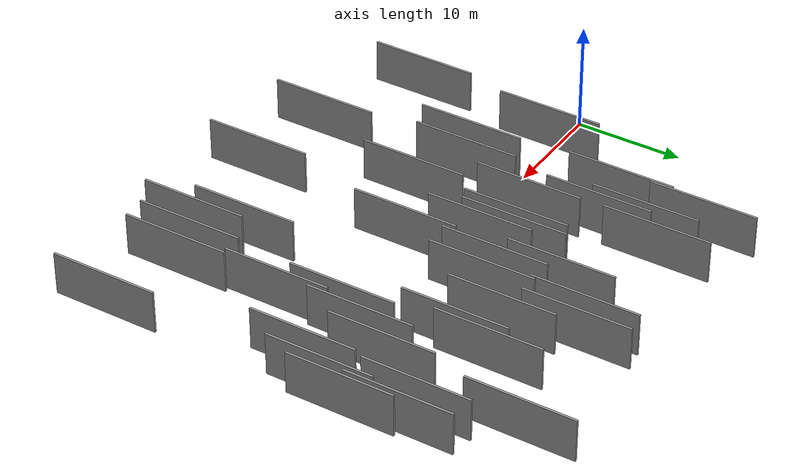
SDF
<sdf version="1.6">
 <world name="default">
  <scene>
   <sky><clouds><speed>12</speed></clouds></sky>
   <ambient>0.4 0.4 0.4 1</ambient>
   <background>0.7 0.7 0.7 1</background>
   <shadows>1</shadows>
  </scene>
  <gravity>0 0 -9.8066</gravity>
  <magnetic_field>6e-06 2.3e-05 -4.2e-05</magnetic_field>
  <physics default="0" name="default_physics" type="ode">
   <ode>
    <solver>
     <type>quick</type>
     <iters>10</iters>
     <sor>1.0</sor>
     <use_dynamic_moi_rescaling>0</use_dynamic_moi_rescaling>
    </solver>
    <constraints>
     <cfm>0</cfm>
     <erp>0.2</erp>
     <contact_max_correcting_vel>100</contact_max_correcting_vel>
     <contact_surface_layer>0.001</contact_surface_layer>
    </constraints>
   </ode>
   <max_step_size>0.004</max_step_size>
   <real_time_factor>1</real_time_factor>
   <real_time_update_rate>250</real_time_update_rate>
  </physics>
  <light name="sun" type="directional">
   <pose>0 0 10 0 0 0</pose>
   <diffuse>0.8 0.8 0.8 1</diffuse>
   <specular>0.2 0.2 0.2 1</specular>
   <attenuation>
    <range>1000</range>
    <constant>0.9</constant>
    <linear>0.01</linear>
    <quadratic>0.001</quadratic>
   </attenuation>
   <direction>-0.5 0.1 -0.9</direction>
  </light>
  <model name="grey_wall_1">
   <static>1</static>
   <pose>44.4361 -19.3445 0.0 0.000000 0.000000 1.570796</pose>
   <link name="link">
    <pose>0 0 2.00 0 0 0</pose>
    <collision name="collision"><geometry><box><size>10.00 0.2 4.00</size></box></geometry></collision>
    <visual name="visual">
     <cast_shadows>0</cast_shadows>
     <geometry><box><size>10.00 0.2 4.00</size></box></geometry>
     <material>
      <script>
       <uri>model://grey_wall/materials/scripts</uri>
       <uri>model://grey_wall/materials/textures</uri>
       <name>vrc/grey_wall</name>
      </script>
     </material>
    </visual>
   </link>
  </model>
  <model name="grey_wall_2">
   <static>1</static>
   <pose>12.5489 13.1491 0.0 0.000000 0.000000 1.570796</pose>
   <link name="link">
    <pose>0 0 2.00 0 0 0</pose>
    <collision name="collision"><geometry><box><size>10.00 0.2 4.00</size></box></geometry></collision>
    <visual name="visual">
     <cast_shadows>0</cast_shadows>
     <geometry><box><size>10.00 0.2 4.00</size></box></geometry>
     <material>
      <script>
       <uri>model://grey_wall/materials/scripts</uri>
       <uri>model://grey_wall/materials/textures</uri>
       <name>vrc/grey_wall</name>
      </script>
     </material>
    </visual>
   </link>
  </model>
  <model name="grey_wall_3">
   <static>1</static>
   <pose>36.4900 -7.8913 0.0 0.000000 0.000000 1.570796</pose>
   <link name="link">
    <pose>0 0 2.00 0 0 0</pose>
    <collision name="collision"><geometry><box><size>10.00 0.2 4.00</size></box></geometry></collision>
    <visual name="visual">
     <cast_shadows>0</cast_shadows>
     <geometry><box><size>10.00 0.2 4.00</size></box></geometry>
     <material>
      <script>
       <uri>model://grey_wall/materials/scripts</uri>
       <uri>model://grey_wall/materials/textures</uri>
       <name>vrc/grey_wall</name>
      </script>
     </material>
    </visual>
   </link>
  </model>
  <model name="grey_wall_4">
   <static>1</static>
   <pose>40.1889 17.0929 0.0 0.000000 0.000000 1.570796</pose>
   <link name="link">
    <pose>0 0 2.00 0 0 0</pose>
    <collision name="collision"><geometry><box><size>10.00 0.2 4.00</size></box></geometry></collision>
    <visual name="visual">
     <cast_shadows>0</cast_shadows>
     <geometry><box><size>10.00 0.2 4.00</size></box></geometry>
     <material>
      <script>
       <uri>model://grey_wall/materials/scripts</uri>
       <uri>model://grey_wall/materials/textures</uri>
       <name>vrc/grey_wall</name>
      </script>
     </material>
    </visual>
   </link>
  </model>
  <model name="grey_wall_5">
   <static>1</static>
   <pose>35.3129 -2.3083 0.0 0.000000 0.000000 1.570796</pose>
   <link name="link">
    <pose>0 0 2.00 0 0 0</pose>
    <collision name="collision"><geometry><box><size>10.00 0.2 4.00</size></box></geometry></collision>
    <visual name="visual">
     <cast_shadows>0</cast_shadows>
     <geometry><box><size>10.00 0.2 4.00</size></box></geometry>
     <material>
      <script>
       <uri>model://grey_wall/materials/scripts</uri>
       <uri>model://grey_wall/materials/textures</uri>
       <name>vrc/grey_wall</name>
      </script>
     </material>
    </visual>
   </link>
  </model>
  <model name="grey_wall_6">
   <static>1</static>
   <pose>26.3322 15.0042 0.0 0.000000 0.000000 1.570796</pose>
   <link name="link">
    <pose>0 0 2.00 0 0 0</pose>
    <collision name="collision"><geometry><box><size>10.00 0.2 4.00</size></box></geometry></collision>
    <visual name="visual">
     <cast_shadows>0</cast_shadows>
     <geometry><box><size>10.00 0.2 4.00</size></box></geometry>
     <material>
      <script>
       <uri>model://grey_wall/materials/scripts</uri>
       <uri>model://grey_wall/materials/textures</uri>
       <name>vrc/grey_wall</name>
      </script>
     </material>
    </visual>
   </link>
  </model>
  <model name="grey_wall_7">
   <static>1</static>
   <pose>45.0312 3.8219 0.0 0.000000 0.000000 1.570796</pose>
   <link name="link">
    <pose>0 0 2.00 0 0 0</pose>
    <collision name="collision"><geometry><box><size>10.00 0.2 4.00</size></box></geometry></collision>
    <visual name="visual">
     <cast_shadows>0</cast_shadows>
     <geometry><box><size>10.00 0.2 4.00</size></box></geometry>
     <material>
      <script>
       <uri>model://grey_wall/materials/scripts</uri>
       <uri>model://grey_wall/materials/textures</uri>
       <name>vrc/grey_wall</name>
      </script>
     </material>
    </visual>
   </link>
  </model>
  <model name="grey_wall_8">
   <static>1</static>
   <pose>28.2191 15.3201 0.0 0.000000 0.000000 1.570796</pose>
   <link name="link">
    <pose>0 0 2.00 0 0 0</pose>
    <collision name="collision"><geometry><box><size>10.00 0.2 4.00</size></box></geometry></collision>
    <visual name="visual">
     <cast_shadows>0</cast_shadows>
     <geometry><box><size>10.00 0.2 4.00</size></box></geometry>
     <material>
      <script>
       <uri>model://grey_wall/materials/scripts</uri>
       <uri>model://grey_wall/materials/textures</uri>
       <name>vrc/grey_wall</name>
      </script>
     </material>
    </visual>
   </link>
  </model>
  <model name="grey_wall_9">
   <static>1</static>
   <pose>37.0206 0.4923 0.0 0.000000 0.000000 1.570796</pose>
   <link name="link">
    <pose>0 0 2.00 0 0 0</pose>
    <collision name="collision"><geometry><box><size>10.00 0.2 4.00</size></box></geometry></collision>
    <visual name="visual">
     <cast_shadows>0</cast_shadows>
     <geometry><box><size>10.00 0.2 4.00</size></box></geometry>
     <material>
      <script>
       <uri>model://grey_wall/materials/scripts</uri>
       <uri>model://grey_wall/materials/textures</uri>
       <name>vrc/grey_wall</name>
      </script>
     </material>
    </visual>
   </link>
  </model>
  <model name="grey_wall_10">
   <static>1</static>
   <pose>26.6462 5.5807 0.0 0.000000 0.000000 1.570796</pose>
   <link name="link">
    <pose>0 0 2.00 0 0 0</pose>
    <collision name="collision"><geometry><box><size>10.00 0.2 4.00</size></box></geometry></collision>
    <visual name="visual">
     <cast_shadows>0</cast_shadows>
     <geometry><box><size>10.00 0.2 4.00</size></box></geometry>
     <material>
      <script>
       <uri>model://grey_wall/materials/scripts</uri>
       <uri>model://grey_wall/materials/textures</uri>
       <name>vrc/grey_wall</name>
      </script>
     </material>
    </visual>
   </link>
  </model>
  <model name="grey_wall_11">
   <static>1</static>
   <pose>17.2393 -6.8475 0.0 0.000000 0.000000 1.570796</pose>
   <link name="link">
    <pose>0 0 2.00 0 0 0</pose>
    <collision name="collision"><geometry><box><size>10.00 0.2 4.00</size></box></geometry></collision>
    <visual name="visual">
     <cast_shadows>0</cast_shadows>
     <geometry><box><size>10.00 0.2 4.00</size></box></geometry>
     <material>
      <script>
       <uri>model://grey_wall/materials/scripts</uri>
       <uri>model://grey_wall/materials/textures</uri>
       <name>vrc/grey_wall</name>
      </script>
     </material>
    </visual>
   </link>
  </model>
  <model name="grey_wall_12">
   <static>1</static>
   <pose>9.3817 9.0859 0.0 0.000000 0.000000 1.570796</pose>
   <link name="link">
    <pose>0 0 2.00 0 0 0</pose>
    <collision name="collision"><geometry><box><size>10.00 0.2 4.00</size></box></geometry></collision>
    <visual name="visual">
     <cast_shadows>0</cast_shadows>
     <geometry><box><size>10.00 0.2 4.00</size></box></geometry>
     <material>
      <script>
       <uri>model://grey_wall/materials/scripts</uri>
       <uri>model://grey_wall/materials/textures</uri>
       <name>vrc/grey_wall</name>
      </script>
     </material>
    </visual>
   </link>
  </model>
  <model name="grey_wall_13">
   <static>1</static>
   <pose>18.8730 4.2570 0.0 0.000000 0.000000 1.570796</pose>
   <link name="link">
    <pose>0 0 2.00 0 0 0</pose>
    <collision name="collision"><geometry><box><size>10.00 0.2 4.00</size></box></geometry></collision>
    <visual name="visual">
     <cast_shadows>0</cast_shadows>
     <geometry><box><size>10.00 0.2 4.00</size></box></geometry>
     <material>
      <script>
       <uri>model://grey_wall/materials/scripts</uri>
       <uri>model://grey_wall/materials/textures</uri>
       <name>vrc/grey_wall</name>
      </script>
     </material>
    </visual>
   </link>
  </model>
  <model name="grey_wall_14">
   <static>1</static>
   <pose>3.2941 -14.4434 0.0 0.000000 0.000000 1.570796</pose>
   <link name="link">
    <pose>0 0 2.00 0 0 0</pose>
    <collision name="collision"><geometry><box><size>10.00 0.2 4.00</size></box></geometry></collision>
    <visual name="visual">
     <cast_shadows>0</cast_shadows>
     <geometry><box><size>10.00 0.2 4.00</size></box></geometry>
     <material>
      <script>
       <uri>model://grey_wall/materials/scripts</uri>
       <uri>model://grey_wall/materials/textures</uri>
       <name>vrc/grey_wall</name>
      </script>
     </material>
    </visual>
   </link>
  </model>
  <model name="grey_wall_15">
   <static>1</static>
   <pose>44.4660 8.8187 0.0 0.000000 0.000000 1.570796</pose>
   <link name="link">
    <pose>0 0 2.00 0 0 0</pose>
    <collision name="collision"><geometry><box><size>10.00 0.2 4.00</size></box></geometry></collision>
    <visual name="visual">
     <cast_shadows>0</cast_shadows>
     <geometry><box><size>10.00 0.2 4.00</size></box></geometry>
     <material>
      <script>
       <uri>model://grey_wall/materials/scripts</uri>
       <uri>model://grey_wall/materials/textures</uri>
       <name>vrc/grey_wall</name>
      </script>
     </material>
    </visual>
   </link>
  </model>
  <model name="grey_wall_16">
   <static>1</static>
   <pose>42.3598 9.1158 0.0 0.000000 0.000000 1.570796</pose>
   <link name="link">
    <pose>0 0 2.00 0 0 0</pose>
    <collision name="collision"><geometry><box><size>10.00 0.2 4.00</size></box></geometry></collision>
    <visual name="visual">
     <cast_shadows>0</cast_shadows>
     <geometry><box><size>10.00 0.2 4.00</size></box></geometry>
     <material>
      <script>
       <uri>model://grey_wall/materials/scripts</uri>
       <uri>model://grey_wall/materials/textures</uri>
       <name>vrc/grey_wall</name>
      </script>
     </material>
    </visual>
   </link>
  </model>
  <model name="grey_wall_17">
   <static>1</static>
   <pose>24.4006 5.4926 0.0 0.000000 0.000000 1.570796</pose>
   <link name="link">
    <pose>0 0 2.00 0 0 0</pose>
    <collision name="collision"><geometry><box><size>10.00 0.2 4.00</size></box></geometry></collision>
    <visual name="visual">
     <cast_shadows>0</cast_shadows>
     <geometry><box><size>10.00 0.2 4.00</size></box></geometry>
     <material>
      <script>
       <uri>model://grey_wall/materials/scripts</uri>
       <uri>model://grey_wall/materials/textures</uri>
       <name>vrc/grey_wall</name>
      </script>
     </material>
    </visual>
   </link>
  </model>
  <model name="grey_wall_18">
   <static>1</static>
   <pose>23.8431 -3.5345 0.0 0.000000 0.000000 1.570796</pose>
   <link name="link">
    <pose>0 0 2.00 0 0 0</pose>
    <collision name="collision"><geometry><box><size>10.00 0.2 4.00</size></box></geometry></collision>
    <visual name="visual">
     <cast_shadows>0</cast_shadows>
     <geometry><box><size>10.00 0.2 4.00</size></box></geometry>
     <material>
      <script>
       <uri>model://grey_wall/materials/scripts</uri>
       <uri>model://grey_wall/materials/textures</uri>
       <name>vrc/grey_wall</name>
      </script>
     </material>
    </visual>
   </link>
  </model>
  <model name="grey_wall_19">
   <static>1</static>
   <pose>14.7741 15.3898 0.0 0.000000 0.000000 1.570796</pose>
   <link name="link">
    <pose>0 0 2.00 0 0 0</pose>
    <collision name="collision"><geometry><box><size>10.00 0.2 4.00</size></box></geometry></collision>
    <visual name="visual">
     <cast_shadows>0</cast_shadows>
     <geometry><box><size>10.00 0.2 4.00</size></box></geometry>
     <material>
      <script>
       <uri>model://grey_wall/materials/scripts</uri>
       <uri>model://grey_wall/materials/textures</uri>
       <name>vrc/grey_wall</name>
      </script>
     </material>
    </visual>
   </link>
  </model>
  <model name="grey_wall_20">
   <static>1</static>
   <pose>41.9252 -1.6910 0.0 0.000000 0.000000 1.570796</pose>
   <link name="link">
    <pose>0 0 2.00 0 0 0</pose>
    <collision name="collision"><geometry><box><size>10.00 0.2 4.00</size></box></geometry></collision>
    <visual name="visual">
     <cast_shadows>0</cast_shadows>
     <geometry><box><size>10.00 0.2 4.00</size></box></geometry>
     <material>
      <script>
       <uri>model://grey_wall/materials/scripts</uri>
       <uri>model://grey_wall/materials/textures</uri>
       <name>vrc/grey_wall</name>
      </script>
     </material>
    </visual>
   </link>
  </model>
  <model name="grey_wall_21">
   <static>1</static>
   <pose>21.0378 2.0630 0.0 0.000000 0.000000 1.570796</pose>
   <link name="link">
    <pose>0 0 2.00 0 0 0</pose>
    <collision name="collision"><geometry><box><size>10.00 0.2 4.00</size></box></geometry></collision>
    <visual name="visual">
     <cast_shadows>0</cast_shadows>
     <geometry><box><size>10.00 0.2 4.00</size></box></geometry>
     <material>
      <script>
       <uri>model://grey_wall/materials/scripts</uri>
       <uri>model://grey_wall/materials/textures</uri>
       <name>vrc/grey_wall</name>
      </script>
     </material>
    </visual>
   </link>
  </model>
  <model name="grey_wall_22">
   <static>1</static>
   <pose>36.9870 -17.6509 0.0 0.000000 0.000000 1.570796</pose>
   <link name="link">
    <pose>0 0 2.00 0 0 0</pose>
    <collision name="collision"><geometry><box><size>10.00 0.2 4.00</size></box></geometry></collision>
    <visual name="visual">
     <cast_shadows>0</cast_shadows>
     <geometry><box><size>10.00 0.2 4.00</size></box></geometry>
     <material>
      <script>
       <uri>model://grey_wall/materials/scripts</uri>
       <uri>model://grey_wall/materials/textures</uri>
       <name>vrc/grey_wall</name>
      </script>
     </material>
    </visual>
   </link>
  </model>
  <model name="grey_wall_23">
   <static>1</static>
   <pose>23.0285 10.9817 0.0 0.000000 0.000000 1.570796</pose>
   <link name="link">
    <pose>0 0 2.00 0 0 0</pose>
    <collision name="collision"><geometry><box><size>10.00 0.2 4.00</size></box></geometry></collision>
    <visual name="visual">
     <cast_shadows>0</cast_shadows>
     <geometry><box><size>10.00 0.2 4.00</size></box></geometry>
     <material>
      <script>
       <uri>model://grey_wall/materials/scripts</uri>
       <uri>model://grey_wall/materials/textures</uri>
       <name>vrc/grey_wall</name>
      </script>
     </material>
    </visual>
   </link>
  </model>
  <model name="grey_wall_24">
   <static>1</static>
   <pose>33.2820 7.0538 0.0 0.000000 0.000000 1.570796</pose>
   <link name="link">
    <pose>0 0 2.00 0 0 0</pose>
    <collision name="collision"><geometry><box><size>10.00 0.2 4.00</size></box></geometry></collision>
    <visual name="visual">
     <cast_shadows>0</cast_shadows>
     <geometry><box><size>10.00 0.2 4.00</size></box></geometry>
     <material>
      <script>
       <uri>model://grey_wall/materials/scripts</uri>
       <uri>model://grey_wall/materials/textures</uri>
       <name>vrc/grey_wall</name>
      </script>
     </material>
    </visual>
   </link>
  </model>
  <model name="grey_wall_25">
   <static>1</static>
   <pose>29.7813 9.3330 0.0 0.000000 0.000000 1.570796</pose>
   <link name="link">
    <pose>0 0 2.00 0 0 0</pose>
    <collision name="collision"><geometry><box><size>10.00 0.2 4.00</size></box></geometry></collision>
    <visual name="visual">
     <cast_shadows>0</cast_shadows>
     <geometry><box><size>10.00 0.2 4.00</size></box></geometry>
     <material>
      <script>
       <uri>model://grey_wall/materials/scripts</uri>
       <uri>model://grey_wall/materials/textures</uri>
       <name>vrc/grey_wall</name>
      </script>
     </material>
    </visual>
   </link>
  </model>
  <model name="grey_wall_26">
   <static>1</static>
   <pose>38.9649 3.7812 0.0 0.000000 0.000000 1.570796</pose>
   <link name="link">
    <pose>0 0 2.00 0 0 0</pose>
    <collision name="collision"><geometry><box><size>10.00 0.2 4.00</size></box></geometry></collision>
    <visual name="visual">
     <cast_shadows>0</cast_shadows>
     <geometry><box><size>10.00 0.2 4.00</size></box></geometry>
     <material>
      <script>
       <uri>model://grey_wall/materials/scripts</uri>
       <uri>model://grey_wall/materials/textures</uri>
       <name>vrc/grey_wall</name>
      </script>
     </material>
    </visual>
   </link>
  </model>
  <model name="grey_wall_27">
   <static>1</static>
   <pose>19.9759 4.7290 0.0 0.000000 0.000000 1.570796</pose>
   <link name="link">
    <pose>0 0 2.00 0 0 0</pose>
    <collision name="collision"><geometry><box><size>10.00 0.2 4.00</size></box></geometry></collision>
    <visual name="visual">
     <cast_shadows>0</cast_shadows>
     <geometry><box><size>10.00 0.2 4.00</size></box></geometry>
     <material>
      <script>
       <uri>model://grey_wall/materials/scripts</uri>
       <uri>model://grey_wall/materials/textures</uri>
       <name>vrc/grey_wall</name>
      </script>
     </material>
    </visual>
   </link>
  </model>
  <model name="grey_wall_28">
   <static>1</static>
   <pose>32.1182 -19.3072 0.0 0.000000 0.000000 1.570796</pose>
   <link name="link">
    <pose>0 0 2.00 0 0 0</pose>
    <collision name="collision"><geometry><box><size>10.00 0.2 4.00</size></box></geometry></collision>
    <visual name="visual">
     <cast_shadows>0</cast_shadows>
     <geometry><box><size>10.00 0.2 4.00</size></box></geometry>
     <material>
      <script>
       <uri>model://grey_wall/materials/scripts</uri>
       <uri>model://grey_wall/materials/textures</uri>
       <name>vrc/grey_wall</name>
      </script>
     </material>
    </visual>
   </link>
  </model>
  <model name="grey_wall_29">
   <static>1</static>
   <pose>34.7743 -17.8119 0.0 0.000000 0.000000 1.570796</pose>
   <link name="link">
    <pose>0 0 2.00 0 0 0</pose>
    <collision name="collision"><geometry><box><size>10.00 0.2 4.00</size></box></geometry></collision>
    <visual name="visual">
     <cast_shadows>0</cast_shadows>
     <geometry><box><size>10.00 0.2 4.00</size></box></geometry>
     <material>
      <script>
       <uri>model://grey_wall/materials/scripts</uri>
       <uri>model://grey_wall/materials/textures</uri>
       <name>vrc/grey_wall</name>
      </script>
     </material>
    </visual>
   </link>
  </model>
  <model name="grey_wall_30">
   <static>1</static>
   <pose>13.4600 9.1635 0.0 0.000000 0.000000 1.570796</pose>
   <link name="link">
    <pose>0 0 2.00 0 0 0</pose>
    <collision name="collision"><geometry><box><size>10.00 0.2 4.00</size></box></geometry></collision>
    <visual name="visual">
     <cast_shadows>0</cast_shadows>
     <geometry><box><size>10.00 0.2 4.00</size></box></geometry>
     <material>
      <script>
       <uri>model://grey_wall/materials/scripts</uri>
       <uri>model://grey_wall/materials/textures</uri>
       <name>vrc/grey_wall</name>
      </script>
     </material>
    </visual>
   </link>
  </model>
  <model name="grey_wall_31">
   <static>1</static>
   <pose>21.7577 -19.9403 0.0 0.000000 0.000000 1.570796</pose>
   <link name="link">
    <pose>0 0 2.00 0 0 0</pose>
    <collision name="collision"><geometry><box><size>10.00 0.2 4.00</size></box></geometry></collision>
    <visual name="visual">
     <cast_shadows>0</cast_shadows>
     <geometry><box><size>10.00 0.2 4.00</size></box></geometry>
     <material>
      <script>
       <uri>model://grey_wall/materials/scripts</uri>
       <uri>model://grey_wall/materials/textures</uri>
       <name>vrc/grey_wall</name>
      </script>
     </material>
    </visual>
   </link>
  </model>
  <model name="grey_wall_32">
   <static>1</static>
   <pose>12.4375 -4.4764 0.0 0.000000 0.000000 1.570796</pose>
   <link name="link">
    <pose>0 0 2.00 0 0 0</pose>
    <collision name="collision"><geometry><box><size>10.00 0.2 4.00</size></box></geometry></collision>
    <visual name="visual">
     <cast_shadows>0</cast_shadows>
     <geometry><box><size>10.00 0.2 4.00</size></box></geometry>
     <material>
      <script>
       <uri>model://grey_wall/materials/scripts</uri>
       <uri>model://grey_wall/materials/textures</uri>
       <name>vrc/grey_wall</name>
      </script>
     </material>
    </visual>
   </link>
  </model>
  <model name="grey_wall_33">
   <static>1</static>
   <pose>34.1472 10.6841 0.0 0.000000 0.000000 1.570796</pose>
   <link name="link">
    <pose>0 0 2.00 0 0 0</pose>
    <collision name="collision"><geometry><box><size>10.00 0.2 4.00</size></box></geometry></collision>
    <visual name="visual">
     <cast_shadows>0</cast_shadows>
     <geometry><box><size>10.00 0.2 4.00</size></box></geometry>
     <material>
      <script>
       <uri>model://grey_wall/materials/scripts</uri>
       <uri>model://grey_wall/materials/textures</uri>
       <name>vrc/grey_wall</name>
      </script>
     </material>
    </visual>
   </link>
  </model>
  <model name="grey_wall_34">
   <static>1</static>
   <pose>13.3496 -18.5808 0.0 0.000000 0.000000 1.570796</pose>
   <link name="link">
    <pose>0 0 2.00 0 0 0</pose>
    <collision name="collision"><geometry><box><size>10.00 0.2 4.00</size></box></geometry></collision>
    <visual name="visual">
     <cast_shadows>0</cast_shadows>
     <geometry><box><size>10.00 0.2 4.00</size></box></geometry>
     <material>
      <script>
       <uri>model://grey_wall/materials/scripts</uri>
       <uri>model://grey_wall/materials/textures</uri>
       <name>vrc/grey_wall</name>
      </script>
     </material>
    </visual>
   </link>
  </model>
  <model name="grey_wall_35">
   <static>1</static>
   <pose>43.9489 1.2194 0.0 0.000000 0.000000 1.570796</pose>
   <link name="link">
    <pose>0 0 2.00 0 0 0</pose>
    <collision name="collision"><geometry><box><size>10.00 0.2 4.00</size></box></geometry></collision>
    <visual name="visual">
     <cast_shadows>0</cast_shadows>
     <geometry><box><size>10.00 0.2 4.00</size></box></geometry>
     <material>
      <script>
       <uri>model://grey_wall/materials/scripts</uri>
       <uri>model://grey_wall/materials/textures</uri>
       <name>vrc/grey_wall</name>
      </script>
     </material>
    </visual>
   </link>
  </model>
  <model name="grey_wall_36">
   <static>1</static>
   <pose>9.8980 -5.4899 0.0 0.000000 0.000000 1.570796</pose>
   <link name="link">
    <pose>0 0 2.00 0 0 0</pose>
    <collision name="collision"><geometry><box><size>10.00 0.2 4.00</size></box></geometry></collision>
    <visual name="visual">
     <cast_shadows>0</cast_shadows>
     <geometry><box><size>10.00 0.2 4.00</size></box></geometry>
     <material>
      <script>
       <uri>model://grey_wall/materials/scripts</uri>
       <uri>model://grey_wall/materials/textures</uri>
       <name>vrc/grey_wall</name>
      </script>
     </material>
    </visual>
   </link>
  </model>
  <model name="grey_wall_37">
   <static>1</static>
   <pose>14.9374 3.2281 0.0 0.000000 0.000000 1.570796</pose>
   <link name="link">
    <pose>0 0 2.00 0 0 0</pose>
    <collision name="collision"><geometry><box><size>10.00 0.2 4.00</size></box></geometry></collision>
    <visual name="visual">
     <cast_shadows>0</cast_shadows>
     <geometry><box><size>10.00 0.2 4.00</size></box></geometry>
     <material>
      <script>
       <uri>model://grey_wall/materials/scripts</uri>
       <uri>model://grey_wall/materials/textures</uri>
       <name>vrc/grey_wall</name>
      </script>
     </material>
    </visual>
   </link>
  </model>
  <model name="grey_wall_38">
   <static>1</static>
   <pose>30.5572 -15.2445 0.0 0.000000 0.000000 1.570796</pose>
   <link name="link">
    <pose>0 0 2.00 0 0 0</pose>
    <collision name="collision"><geometry><box><size>10.00 0.2 4.00</size></box></geometry></collision>
    <visual name="visual">
     <cast_shadows>0</cast_shadows>
     <geometry><box><size>10.00 0.2 4.00</size></box></geometry>
     <material>
      <script>
       <uri>model://grey_wall/materials/scripts</uri>
       <uri>model://grey_wall/materials/textures</uri>
       <name>vrc/grey_wall</name>
      </script>
     </material>
    </visual>
   </link>
  </model>
  <model name="grey_wall_39">
   <static>1</static>
   <pose>4.3456 -0.7666 0.0 0.000000 0.000000 1.570796</pose>
   <link name="link">
    <pose>0 0 2.00 0 0 0</pose>
    <collision name="collision"><geometry><box><size>10.00 0.2 4.00</size></box></geometry></collision>
    <visual name="visual">
     <cast_shadows>0</cast_shadows>
     <geometry><box><size>10.00 0.2 4.00</size></box></geometry>
     <material>
      <script>
       <uri>model://grey_wall/materials/scripts</uri>
       <uri>model://grey_wall/materials/textures</uri>
       <name>vrc/grey_wall</name>
      </script>
     </material>
    </visual>
   </link>
  </model>
  <model name="grey_wall_40">
   <static>1</static>
   <pose>9.6264 17.0640 0.0 0.000000 0.000000 1.570796</pose>
   <link name="link">
    <pose>0 0 2.00 0 0 0</pose>
    <collision name="collision"><geometry><box><size>10.00 0.2 4.00</size></box></geometry></collision>
    <visual name="visual">
     <cast_shadows>0</cast_shadows>
     <geometry><box><size>10.00 0.2 4.00</size></box></geometry>
     <material>
      <script>
       <uri>model://grey_wall/materials/scripts</uri>
       <uri>model://grey_wall/materials/textures</uri>
       <name>vrc/grey_wall</name>
      </script>
     </material>
    </visual>
   </link>
  </model>
 </world>
</sdf>
